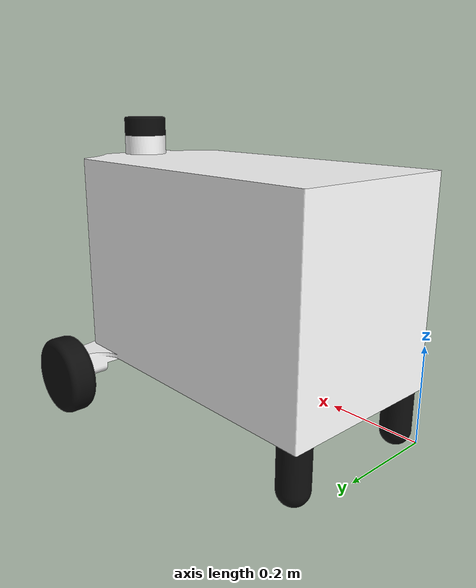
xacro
<?xml version="1.0" ?>
<robot name="delivbot" xmlns:xacro="http://www.ros.org/wiki/xacro">

<xacro:include filename="$(find delivbot)/urdf/materials.xacro" />
<xacro:include filename="$(find delivbot)/urdf/delivbot.ros2control" />
<xacro:include filename="$(find delivbot)/urdf/delivbot.gazebo" />

<xacro:property name="mass_scale" value="0.03274160729079842"/>
<link name="base_link">
  <inertial>
    <origin xyz="0.32841545472274736 0.17499999999999993 0.31803039127731625" rpy="0 0 0"/>
    <mass value="${mass_scale * 740.1624907814697}"/>
    <inertia ixx="${mass_scale * 17.958055}" iyy="${mass_scale * 37.222212}" izz="${mass_scale * 33.935393}" ixy="${mass_scale * 0.0}" iyz="${mass_scale * -0.0}" ixz="${mass_scale * 0.151875}"/>
  </inertial>
  <visual>
    <origin xyz="0 0 0" rpy="0 0 0"/>
    <geometry>
      <mesh filename="file://$(find delivbot)/meshes/base_link.stl" scale="0.001 0.001 0.001"/>
    </geometry>
    <material name="white"/>
  </visual>
  <collision>
    <origin xyz="0 0 0" rpy="0 0 0"/>
    <geometry>
      <mesh filename="file://$(find delivbot)/meshes/base_link.stl" scale="0.001 0.001 0.001"/>
    </geometry>
  </collision>
</link>

<link name="lidar_1">
  <inertial>
    <origin xyz="6.661338147750939e-16 -1.3877787807814457e-16 0.019889655186859145" rpy="0 0 0"/>
    <mass value="${mass_scale * 1.985969318800872}"/>
    <inertia ixx="${mass_scale * 0.001262}" iyy="${mass_scale * 0.001262}" izz="${mass_scale * 0.002}" ixy="${mass_scale * -0.0}" iyz="${mass_scale * -0.0}" ixz="${mass_scale * -0.0}"/>
  </inertial>
  <visual>
    <origin xyz="-0.63 -0.175 -0.564" rpy="0 0 0"/>
    <geometry>
      <mesh filename="file://$(find delivbot)/meshes/lidar_1.stl" scale="0.001 0.001 0.001"/>
    </geometry>
    <material name="black"/>
  </visual>
  <collision>
    <origin xyz="-0.63 -0.175 -0.564" rpy="0 0 0"/>
    <geometry>
      <mesh filename="file://$(find delivbot)/meshes/lidar_1.stl" scale="0.001 0.001 0.001"/>
    </geometry>
  </collision>
</link>

<link name="Lwheel_1">
  <inertial>
    <origin xyz="-1.3322676295501878e-15 0.08206390404434488 -5.1209037010835345e-15" rpy="0 0 0"/>
    <mass value="${mass_scale * 8.382217572864255}"/>
    <inertia ixx="${mass_scale * 0.015003}" iyy="${mass_scale * 0.025627}" izz="${mass_scale * 0.015003}" ixy="${mass_scale * -0.0}" iyz="${mass_scale * -0.0}" ixz="${mass_scale * 0.0}"/>
  </inertial>
  <visual>
    <origin xyz="-0.575 -0.35 -0.08" rpy="0 0 0"/>
    <geometry>
      <mesh filename="file://$(find delivbot)/meshes/Lwheel_1.stl" scale="0.001 0.001 0.001"/>
    </geometry>
    <material name="black"/>
  </visual>
  <collision>
    <origin xyz="-0.575 -0.35 -0.08" rpy="0 0 0"/>
    <geometry>
      <mesh filename="file://$(find delivbot)/meshes/Lwheel_1.stl" scale="0.001 0.001 0.001"/>
    </geometry>
  </collision>
</link>

<link name="Rwheel_1">
  <inertial>
    <origin xyz="-5.329070518200751e-15 -0.08206390404434344 -1.3877787807814457e-17" rpy="0 0 0"/>
    <mass value="${mass_scale * 8.38221757286426}"/>
    <inertia ixx="${mass_scale * 0.015003}" iyy="${mass_scale * 0.025627}" izz="${mass_scale * 0.015003}" ixy="${mass_scale * 0.0}" iyz="${mass_scale * -0.0}" ixz="${mass_scale * 0.0}"/>
  </inertial>
  <visual>
    <origin xyz="-0.575 0.35 -0.08" rpy="0 0 0"/>
    <geometry>
      <mesh filename="file://$(find delivbot)/meshes/Rwheel_1.stl" scale="0.001 0.001 0.001"/>
    </geometry>
    <material name="black"/>
  </visual>
  <collision>
    <origin xyz="-0.575 0.35 -0.08" rpy="0 0 0"/>
    <geometry>
      <mesh filename="file://$(find delivbot)/meshes/Rwheel_1.stl" scale="0.001 0.001 0.001"/>
    </geometry>
  </collision>
</link>

<link name="Rcastor_1">
  <inertial>
    <origin xyz="0.0 -6.938893903907228e-17 -0.05224038461538458" rpy="0 0 0"/>
    <mass value="${mass_scale * 2.3083166181516366}"/>
    <inertia ixx="${mass_scale * 0.002636}" iyy="${mass_scale * 0.002636}" izz="${mass_scale * 0.000999}" ixy="${mass_scale * -0.0}" iyz="${mass_scale * 0.0}" ixz="${mass_scale * 0.0}"/>
  </inertial>
  <visual>
    <origin xyz="-0.03 -0.03 -0.114" rpy="0 0 0"/>
    <geometry>
      <mesh filename="file://$(find delivbot)/meshes/Rcastor_1.stl" scale="0.001 0.001 0.001"/>
    </geometry>
    <material name="black"/>
  </visual>
  <collision>
    <origin xyz="-0.03 -0.03 -0.114" rpy="0 0 0"/>
    <geometry>
      <sphere radius="0.04"/>
    </geometry>
  </collision>
</link>

<link name="Lcastor_1">
  <inertial>
    <origin xyz="9.020562075079397e-17 2.7755575615628914e-16 -0.05224038461538455" rpy="0 0 0"/>
    <mass value="${mass_scale * 2.3083166181516366}"/>
    <inertia ixx="${mass_scale * 0.002636}" iyy="${mass_scale * 0.002636}" izz="${mass_scale * 0.000999}" ixy="${mass_scale * 0.0}" iyz="${mass_scale * 0.0}" ixz="${mass_scale * 0.0}"/>
  </inertial>
  <visual>
    <origin xyz="-0.03 -0.32 -0.114" rpy="0 0 0"/>
    <geometry>
      <mesh filename="file://$(find delivbot)/meshes/Lcastor_1.stl" scale="0.001 0.001 0.001"/>
    </geometry>
    <material name="black"/>
  </visual>
  <collision>
    <origin xyz="-0.03 -0.32 -0.114" rpy="0 0 0"/>
    <geometry>
      <sphere radius="0.04"/>
    </geometry>
  </collision>
</link>

<link name="realsense_1">
  <inertial>
    <origin xyz="0.0012109179006365434 -1.942890293094024e-15 5.551115123125783e-16" rpy="0 0 0"/>
    <mass value="${mass_scale * 0.0249231351631883}"/>
    <inertia ixx="${mass_scale * 1.3e-05}" iyy="${mass_scale * 1e-06}" izz="${mass_scale * 1.3e-05}" ixy="${mass_scale * 0.0}" iyz="${mass_scale * -0.0}" ixz="${mass_scale * -0.0}"/>
  </inertial>
  <visual>
    <origin xyz="-0.675 -0.175 -0.50975" rpy="0 0 0"/>
    <geometry>
      <mesh filename="file://$(find delivbot)/meshes/realsense_1.stl" scale="0.001 0.001 0.001"/>
    </geometry>
    <material name="black"/>
  </visual>
  <collision>
    <origin xyz="-0.675 -0.175 -0.50975" rpy="0 0 0"/>
    <geometry>
      <mesh filename="file://$(find delivbot)/meshes/realsense_1.stl" scale="0.001 0.001 0.001"/>
    </geometry>
  </collision>
</link>

<joint name="lidar" type="fixed">
  <origin xyz="0.63 0.175 0.564" rpy="0 0 0"/>
  <parent link="base_link"/>
  <child link="lidar_1"/>
</joint>

<!-- IMU link positioned 0.40 m below the lidar joint location -->
<link name="imu">
  <inertial>
    <origin xyz="0 0 0" rpy="0 0 0"/>
    <mass value="0.05"/>
    <inertia ixx="1e-4" iyy="1e-4" izz="1e-4" ixy="0" ixz="0" iyz="0"/>
  </inertial>
  <visual>
    <origin xyz="0 0 0" rpy="0 0 0"/>
    <geometry>
      <box size="0.04 0.02 0.01"/>
    </geometry>
    <material name="black"/>
  </visual>
  <collision>
    <origin xyz="0 0 0" rpy="0 0 0"/>
    <geometry>
      <box size="0.04 0.02 0.01"/>
    </geometry>
  </collision>

</link>

<joint name="imu_joint" type="fixed">
  <!-- Base link to IMU at lidar xyz with z-0.40 -->
  <origin xyz="0.63 0.175 0.164" rpy="0 0 0"/>
  <parent link="base_link"/>
  <child link="imu"/>
</joint>

<joint name="Lwheel" type="continuous">
  <origin xyz="0.575 0.35 0.08" rpy="0 0 0"/>
  <parent link="base_link"/>
  <child link="Lwheel_1"/>
  <axis xyz="0.0 1.0 -0.0"/>
</joint>

<joint name="Rwheel" type="continuous">
  <origin xyz="0.575 -0.35 0.08" rpy="0 0 0"/>
  <parent link="base_link"/>
  <child link="Rwheel_1"/>
  <axis xyz="0.0 1.0 0.0"/>
</joint>

<joint name="Rcastor" type="fixed">
  <origin xyz="0.03 0.03 0.114" rpy="0 0 0"/>
  <parent link="base_link"/>
  <child link="Rcastor_1"/>
</joint>

<joint name="Lcastor" type="fixed">
  <origin xyz="0.03 0.32 0.114" rpy="0 0 0"/>
  <parent link="base_link"/>
  <child link="Lcastor_1"/>
</joint>

<joint name="realsense" type="fixed">
  <origin xyz="0.675 0.175 0.50975" rpy="0 0 0"/>
  <parent link="base_link"/>
  <child link="realsense_1"/>
</joint>

</robot>

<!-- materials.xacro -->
<robot name="delivbot" xmlns:xacro="http://www.ros.org/wiki/xacro" >

  <!-- Basic color palette used by visuals in RViz -->
  <material name="white">
    <color rgba="1.000 1.000 1.000 1.000"/>
  </material>

  <material name="black">
    <color rgba="0.050 0.050 0.050 1.000"/>
  </material>

  <!-- Keep silver defined for compatibility if referenced elsewhere -->
  <material name="silver">
    <color rgba="0.700 0.700 0.700 1.000"/>
  </material>

</robot>

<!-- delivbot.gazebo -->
<robot name="delivbot" xmlns:xacro="http://www.ros.org/wiki/xacro" >

<!-- Gazebo material and friction settings -->
<xacro:property name="body_color_gz" value="Gazebo/White" />
<xacro:property name="other_color_gz" value="Gazebo/Black" />

<!-- Friction coefficients (mu1, mu2) -->
<!-- High grip for drive wheels to avoid sliding -->
<xacro:property name="wheel_mu" value="1.2" />
<xacro:property name="wheel_mu2" value="1.2" />
<!-- Very low friction for casters so they slide freely -->
<xacro:property name="caster_mu" value="0.05" />
<xacro:property name="caster_mu2" value="0.05" />
<!-- Default for the main body and non-contacting parts -->
<xacro:property name="body_mu" value="0.2" />
<xacro:property name="body_mu2" value="0.2" />

<gazebo>
  <plugin filename="ign_ros2_control-system" name="ign_ros2_control::IgnitionROS2ControlPlugin">
    <parameters>$(find delivbot)/config/ros2_control.yaml</parameters>
  </plugin>
</gazebo>

<gazebo reference="base_link">
  <material>${body_color_gz}</material>
  <mu1>${body_mu}</mu1>
  <mu2>${body_mu2}</mu2>
  <self_collide>false</self_collide>
  <gravity>true</gravity>
  <!-- Consider disabling self_collide on chassis if issues arise -->
</gazebo>

<gazebo reference="lidar_1">
  <material>${other_color_gz}</material>
  <mu1>${body_mu}</mu1>
  <mu2>${body_mu2}</mu2>
  <self_collide>false</self_collide>
  <!-- 3D lidar sensor -->
  <sensor name="lidar_1" type="gpu_lidar">
    <pose>0 0 0 0 0 0</pose>
    <visualize>true</visualize>
    <always_on>true</always_on>
    <update_rate>10</update_rate>
    <topic>/lidar/points</topic>
    <frame>lidar_1</frame>
    <frame_id>lidar_1</frame_id>

    <ray>
      <scan>
        <horizontal>
          <samples>2048</samples>
          <resolution>1</resolution>
          <min_angle>-3.14159</min_angle>
          <max_angle>3.14159</max_angle>
        </horizontal>
        <vertical>
          <samples>128</samples>
          <resolution>1</resolution>
          <min_angle>-0.9163</min_angle>
          <max_angle>0.9163</max_angle>
        </vertical>
      </scan>
      <range>
        <min>0.2</min>
        <max>25.0</max>
        <resolution>0.01</resolution>
      </range>
      <output_type>point_cloud</output_type>
      <noise>
        <type>gaussian</type>
        <mean>0.0</mean>
        <stddev>0.01</stddev>
      </noise>
    </ray>
  </sensor>
</gazebo>

<gazebo reference="Lwheel_1">
  <material>${other_color_gz}</material>
  <mu1>${wheel_mu}</mu1>
  <mu2>${wheel_mu2}</mu2>
  <self_collide>false</self_collide>
</gazebo>

<gazebo reference="Rwheel_1">
  <material>${other_color_gz}</material>
  <mu1>${wheel_mu}</mu1>
  <mu2>${wheel_mu2}</mu2>
  <self_collide>false</self_collide>
</gazebo>

<gazebo reference="Rcastor_1">
  <material>${other_color_gz}</material>
  <mu1>${caster_mu}</mu1>
  <mu2>${caster_mu2}</mu2>
  <self_collide>false</self_collide>
  <slip1>0.5</slip1>
  <slip2>0.5</slip2>
</gazebo>

<gazebo reference="Lcastor_1">
  <material>${other_color_gz}</material>
  <mu1>${caster_mu}</mu1>
  <mu2>${caster_mu2}</mu2>
  <self_collide>false</self_collide>
  <slip1>0.5</slip1>
  <slip2>0.5</slip2>
</gazebo>

<gazebo reference="realsense_1">
  <material>${other_color_gz}</material>
  <mu1>${body_mu}</mu1>
  <mu2>${body_mu2}</mu2>
  <self_collide>false</self_collide>
  <!-- RGB-D camera approximating an Intel RealSense -->
  <sensor name="realsense_1" type="rgbd_camera">
    <pose>0 0 0 0 0 0</pose>
    <visualize>true</visualize>
    <always_on>true</always_on>
    <update_rate>30</update_rate>

    <topic>/realsense/image</topic>
    <frame>realsense_1</frame>
    <frame_id>realsense_1</frame_id>
    <camera>
      <horizontal_fov>1.501</horizontal_fov>
      <image>
        <width>1280</width>
        <height>720</height>
        <format>R8G8B8</format>
      </image>
      <clip>
        <near>0.3</near>
        <far>10.0</far>
      </clip>
    </camera>

    <depth_camera>
      <topic>/realsense/depth_image</topic>
      <clip>
        <near>0.3</near>
        <far>10.0</far>
      </clip>
    </depth_camera>

    <camera_info_topic>/realsense/camera_info</camera_info_topic>
    <depth_camera_info_topic>/realsense/depth_camera_info</depth_camera_info_topic>
    <point_cloud_topic>/realsense/points</point_cloud_topic>
    <point_cloud_cutoff>0.3</point_cloud_cutoff>
  </sensor>
</gazebo>

<!-- IMU sensor publishing sensor_msgs/Imu on /imu -->
<gazebo reference="imu">
  <material>${other_color_gz}</material>
  <mu1>${body_mu}</mu1>
  <mu2>${body_mu2}</mu2>
  <self_collide>false</self_collide>
  <sensor name="imu_sensor" type="imu">
    <always_on>true</always_on>
    <update_rate>200</update_rate>
    <topic>/imu</topic>
    <visualize>false</visualize>
    <imu>
      <angular_velocity>
        <x>
          <noise type="gaussian">
            <mean>0.0</mean>
            <stddev>0.0001</stddev>
          </noise>
        </x>
        <y>
          <noise type="gaussian">
            <mean>0.0</mean>
            <stddev>0.0001</stddev>
          </noise>
        </y>
        <z>
          <noise type="gaussian">
            <mean>0.0</mean>
            <stddev>0.0001</stddev>
          </noise>
        </z>
      </angular_velocity>
      <linear_acceleration>
        <x>
          <noise type="gaussian">
            <mean>0.0</mean>
            <stddev>0.01</stddev>
          </noise>
        </x>
        <y>
          <noise type="gaussian">
            <mean>0.0</mean>
            <stddev>0.01</stddev>
          </noise>
        </y>
        <z>
          <noise type="gaussian">
            <mean>0.0</mean>
            <stddev>0.01</stddev>
          </noise>
        </z>
      </linear_acceleration>
    </imu>
  </sensor>
</gazebo>

</robot>
